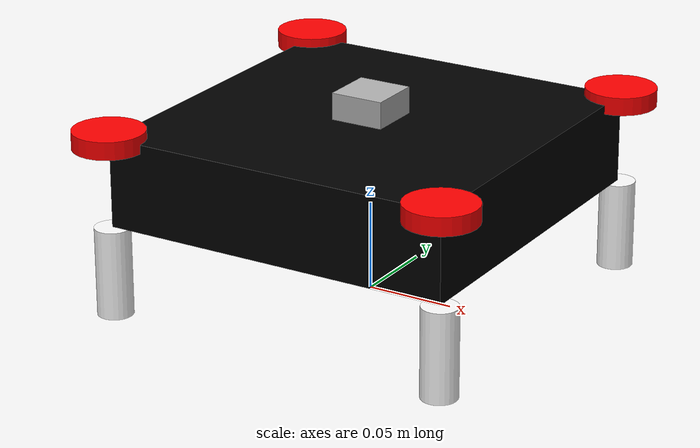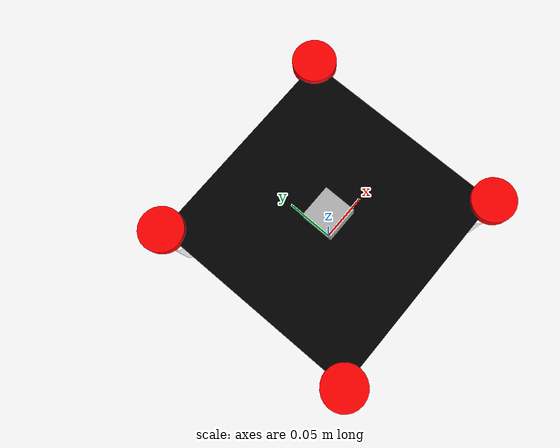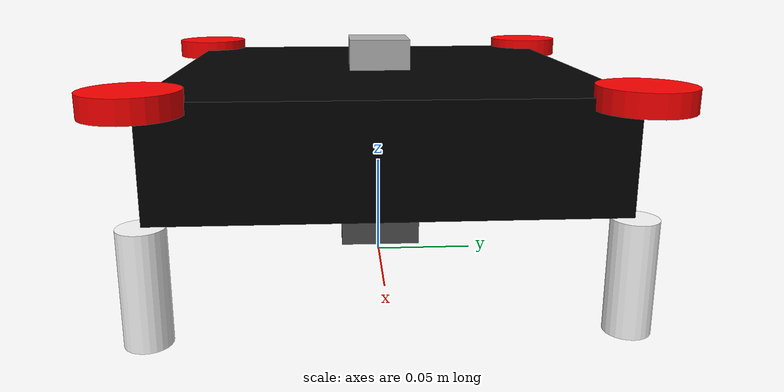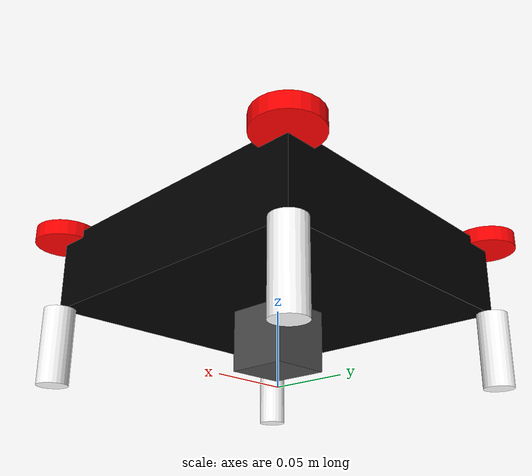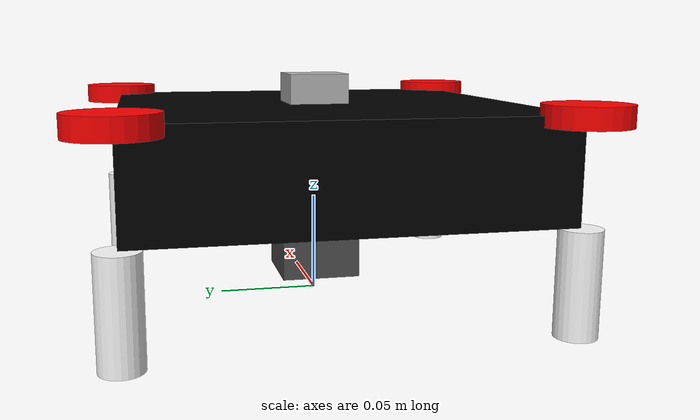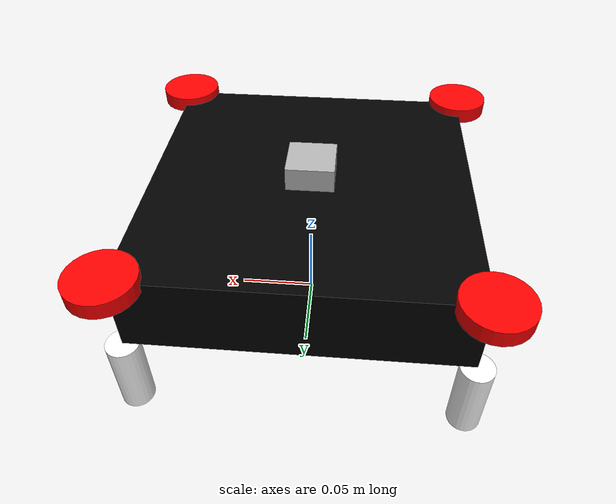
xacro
<?xml version="1.0"?>

<robot xmlns:xacro="http://www.ros.org/wiki/xacro" name="helios">

    <xacro:include filename="helios.urdf.xacro"/>

    <!-- Dummy Link and Dummy Joint -->
    <link name="dummy_link" />
    <joint name="base_to_dummy" type="fixed">
    <parent link="dummy_link" />
    <child link="base_link" />
    </joint>

    <!-- Base Link -->
    <link name="base_link">
        <visual>
            <geometry>
                <box size="0.2 0.2 0.05"/>
            </geometry>
            <origin xyz="0 0 0.075" rpy="0 0 0"/>
            <material name="black"/>
        </visual>
        <collision>
            <geometry>
                <box size="0.2 0.2 0.05"/>
            </geometry>
            <origin xyz="0 0 0.075" rpy="0 0 0"/>
        </collision>
        <xacro:box_inertia mass="0.1" w="0.2" d="0.2" h="0.05"/>
    </link>

    <!-- Propeller links -->

    <xacro:propeller_link pref="right" suff="1"/>

    <xacro:propeller_link pref="right" suff="2"/>

    <xacro:propeller_link pref="left" suff="1"/>

    <xacro:propeller_link pref="left" suff="2"/>

    <!-- Propeller Joints-->

    <joint name="rp1_joint" type="continuous">
        <parent link="base_link"/>
        <child link="right_propeller_1"/>
        <origin xyz="0.1 0.1 0.1" rpy="0.0 0.0 0.0"/>
        <axis xyz="0.0 0.0 1.0"/>
    </joint>

    <joint name="rp2_joint" type="continuous">
        <parent link="base_link"/>
        <child link="right_propeller_2"/>
        <origin xyz="0.1 -0.1 0.1" rpy="0.0 0.0 0.0"/>
        <axis xyz="0.0 0.0 1.0"/>
    </joint>

    <joint name="lp1_joint" type="continuous">
        <parent link="base_link"/>
        <child link="left_propeller_1"/>
        <origin xyz="-0.1 0.1 0.1" rpy="0.0 0.0 0.0"/>
        <axis xyz="0.0 0.0 1.0"/>
    </joint>

    <joint name="lp2_joint" type="continuous">
        <parent link="base_link"/>
        <child link="left_propeller_2"/>
        <origin xyz="-0.1 -0.1 0.1" rpy="0.0 0.0 0.0"/>
        <axis xyz="0.0 0.0 1.0"/>
    </joint>

    <!-- Stand links -->
    <xacro:stand_link  num="1"/>

    <xacro:stand_link  num="2"/>

    <xacro:stand_link  num="3"/>

    <xacro:stand_link  num="4"/>

    <!-- Stand joints -->
    <joint name="stand_1_joint" type="fixed">
        <parent link="base_link"/>
        <child link="stand_1"/>
        <origin xyz="0.1 0.1 0.025" rpy="0 0 0"/>
    </joint>

    <joint name="stand_2_joint" type="fixed">
        <parent link="base_link"/>
        <child link="stand_2"/>
        <origin xyz="0.1 -0.1 0.025" rpy="0 0 0"/>
    </joint>

    <joint name="stand_3_joint" type="fixed">
        <parent link="base_link"/>
        <child link="stand_3"/>
        <origin xyz="-0.1 0.1 0.025" rpy="0 0 0"/>
    </joint>

    <joint name="stand_4_joint" type="fixed">
        <parent link="base_link"/>
        <child link="stand_4"/>
        <origin xyz="-0.1 -0.1 0.025" rpy="0 0 0"/>
    </joint>

    <!-- Sensor Links-->
    <link name="camera_link">
        <visual>
            <origin xyz="0.0 0.0 0.0" rpy="0.0 0.0 0.0"/>
            <geometry>
                <box size="0.04 0.04 0.04"/>
            </geometry>
            <material name="black_grey"/>
        </visual>
        <collision>
            <origin xyz="0.0 0.0 0.0" rpy="0.0 0.0 0.0"/>
            <geometry>
                <box size="0.04 0.04 0.04"/>
            </geometry>
        </collision>
        <xacro:box_inertia mass="0.015" w="0.04" d="0.04" h="0.04"/>
    </link>

    <link name="lidar_link">
        <visual>
            <origin xyz="0.0 0.0 0.0" rpy="0.0 0.0 0.0"/>
            <geometry>
                <box size="0.03 0.03 0.03"/>
            </geometry>
            <material name="white_grey"/>
        </visual>
        <collision>
            <origin xyz="0.0 0.0 0.0" rpy="0.0 0.0 0.0"/>
            <geometry>
                <box size="0.03 0.03 0.03"/>
            </geometry>
        </collision>
        <xacro:box_inertia mass="0.04" w="0.03" d="0.03" h="0.03"/>
    </link>

    <!-- Sensor Joints-->
    <joint name="camera_joint" type="fixed">
        <parent link="base_link"/>
        <child link="camera_link"/>
        <origin xyz="0.0 0.0 0.030" rpy="0.0 0.0 0.0"/>
    </joint>

    <joint name="lidar_joint" type="fixed">
        <parent link="base_link"/>
        <child link="lidar_link"/>
        <origin xyz="0.0 0.0 0.1" rpy="0.0 0.0 0.0"/>
    </joint>

    <!-- Gazebo Sensor Plugins -->
    <gazebo reference="camera_link">
        <plugin
          filename="libignition-gazebo-sensors-system.so"
          name="ignition::gazebo::systems::Sensors">
          <sensor name="camera_sensor" type="camera">
            <always_on>1</always_on>
            <update_rate>30</update_rate>
            <topic>/camera/image_raw</topic>
            <camera>
              <horizontal_fov>1.047</horizontal_fov>
              <image>
                <width>640</width>
                <height>480</height>
                <format>R8G8B8</format>
              </image>
              <clip>
                <near>0.1</near>
                <far>100.0</far>
              </clip>
            </camera>
          </sensor>
        </plugin>
    </gazebo>

    <gazebo reference="lidar_link">
        <plugin
          filename="libignition-gazebo-sensors-system.so"
          name="ignition::gazebo::systems::Sensors">
          <sensor name="lidar_sensor" type="gpu_ray">
            <always_on>1</always_on>
            <update_rate>10</update_rate>
            <topic>/lidar/scan</topic>
            <ray>
              <scan>
                <horizontal>
                  <samples>720</samples>
                  <resolution>1</resolution>
                  <min_angle>-1.57</min_angle>
                  <max_angle>1.57</max_angle>
                </horizontal>
                <vertical>
                  <samples>1</samples>
                  <min_angle>0</min_angle>
                  <max_angle>0</max_angle>
                </vertical>
              </scan>
              <range>
                <min>0.2</min>
                <max>30.0</max>
                <resolution>0.01</resolution>
              </range>
            </ray>
          </sensor>
        </plugin>
    </gazebo>

</robot>

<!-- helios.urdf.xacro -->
<robot xmlns:xacro="http://www.ros.org/wiki/xacro" name="helios">

    <!-- Colors -->
    <material name="red">
        <color rgba="1.0 0.0 0.0 1.0"/>
    </material>

    <material name="black">
        <color rgba="0.0 0.0 0.0 1.0"/>
    </material>

    <material name="white_grey">
        <color rgba="0.7 0.7 0.7 1.0"/>
    </material>

    <material name="black_grey">
        <color rgba="0.3 0.3 0.3 1.0"/>
    </material>

    <material name="white">
        <color rgba="1.0 1.0 1.0 1.0"/>
    </material>

    <!-- Properties -->
    <xacro:property name="propeller_mass" value="0.05"/>
    <xacro:property name="propeller_rad" value="0.02"/>
    <xacro:property name="propeller_ht" value="0.01"/>

    <xacro:property name="stand_mass" value="0.02"/>
    <xacro:property name="stand_rad" value="0.01"/>
    <xacro:property name="stand_ht" value="0.05"/>

    <!-- Macros -->
    <!-- CYLINDRICAL INERTIA -->
    <xacro:macro name="cyl_inertia" params="mass rad ht">
        <inertial>
            <origin xyz="0 0 0" rpy="0 0 0" />
            <mass value="${mass}" />
            <inertia
                ixx="${mass * (3 * rad * rad + ht * ht) / 12}"
                ixy="0.0"
                ixz="0.0"
                iyy="${mass * (3 * rad * rad + ht * ht) / 12}"
                iyz="0.0"
                izz="${mass * rad * rad / 2}" />
        </inertial>
    </xacro:macro>

    <!-- BOX INERTIA -->
    <xacro:macro name="box_inertia" params="mass w d h">
        <inertial>
            <origin xyz="0 0 0" rpy="0 0 0" />
            <mass value="${mass}" />
            <inertia
                ixx="${mass * (h * h + d * d) / 12}"
                ixy="0.0"
                ixz="0.0"
                iyy="${mass * (w * w + h * h) / 12}"
                iyz="0.0"
                izz="${mass * (w * w + d * d) / 12}" />
        </inertial>
    </xacro:macro>

    <!-- PROPELLER LINK -->
    <xacro:macro name="propeller_link" params="pref suff">
        <link name="${pref}_propeller_${suff}">
            <visual>
                <geometry>
                    <cylinder radius="${propeller_rad}" length="${propeller_ht}"/>
                </geometry>
                <origin xyz="0 0 0" rpy="0 0 0"/>
                <material name="red"/>
            </visual>
            <collision>
                <origin xyz="0 0 0" rpy="0 0 0"/>
                <geometry>
                    <cylinder radius="${propeller_rad}" length="${propeller_ht}"/>
                </geometry>
            </collision>
            <xacro:cyl_inertia mass="${propeller_mass}" rad="${propeller_rad}" ht="${propeller_ht}"/>
        </link>
    </xacro:macro>

    <!-- STAND LINK -->
    <xacro:macro name="stand_link" params="num">
        <link name="stand_${num}">
            <visual>
                <geometry>
                    <cylinder radius="${stand_rad}" length="${stand_ht}"/>
                </geometry>
                <origin xyz="0 0 0" rpy="0 0 0"/>
                <material name="white"/>
            </visual>
            <collision>
                <origin xyz="0 0 0" rpy="0 0 0"/>
                <geometry>
                    <cylinder radius="${stand_rad}" length="${stand_ht}"/>
                </geometry>
            </collision>
            <xacro:cyl_inertia mass="${stand_mass}" rad="${stand_rad}" ht="${stand_ht}"/>
        </link>
    </xacro:macro>
</robot>
